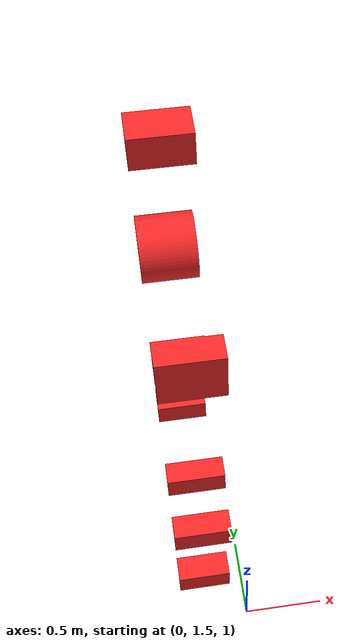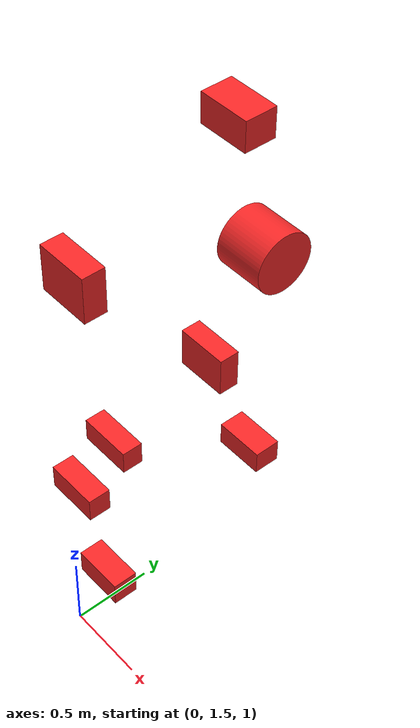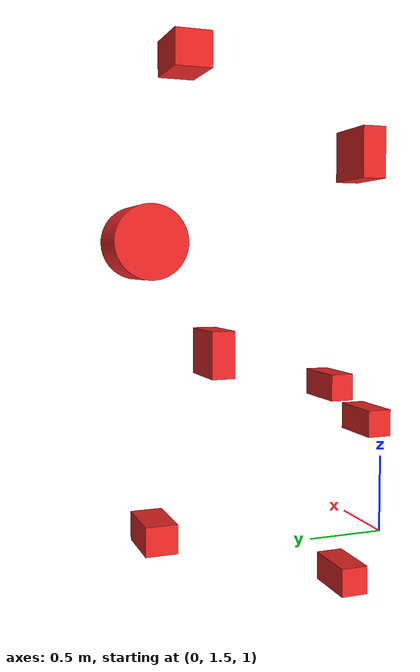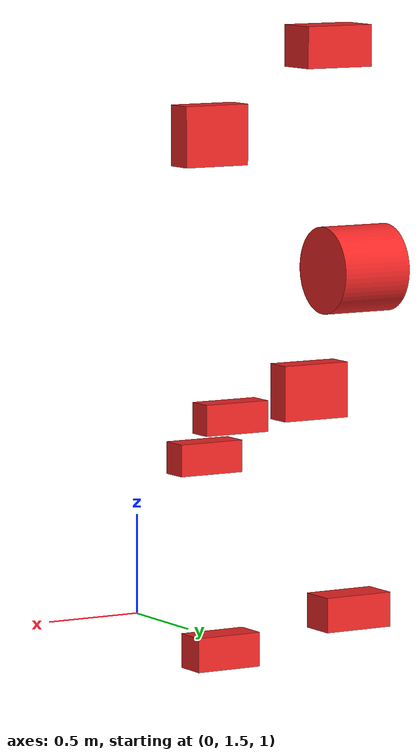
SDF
<?xml version="1.0"?>
<sdf version="1.6">
  <model name="obstaculos_var">
    <static>true</static>
    <pose>0 0 0 0 0 1.5708</pose>

    <link name="link">
      <visual name="visual_obstaculosVar">
        <geometry>
          <mesh>
            <uri>model://laberinto_real/meshes/obstaculosVar.stl</uri>
            <scale>0.001 0.001 0.001</scale>
          </mesh>
        </geometry>
        <material>
          <ambient>0.85 0.10 0.10 1</ambient>
          <diffuse>0.95 0.15 0.15 1</diffuse>
          <specular>0.05 0.05 0.05 1</specular>
          <pbr>
            <metal>
              <metalness>0.0</metalness>
              <roughness>0.85</roughness>
            </metal>
          </pbr>
        </material>
      </visual>

      <collision name="colision_obstaculosVar">
        <geometry>
          <mesh>
            <uri>model://laberinto_real/meshes/obstaculosVar.stl</uri>
            <scale>0.001 0.001 0.001</scale>
          </mesh>
        </geometry>
      </collision>
    </link>
  </model>
</sdf>
